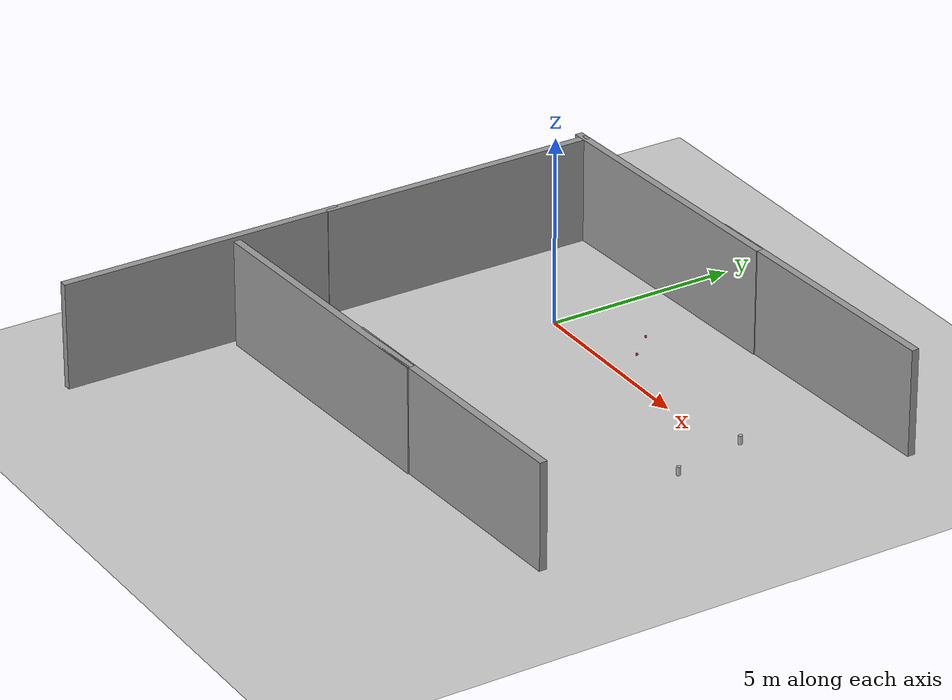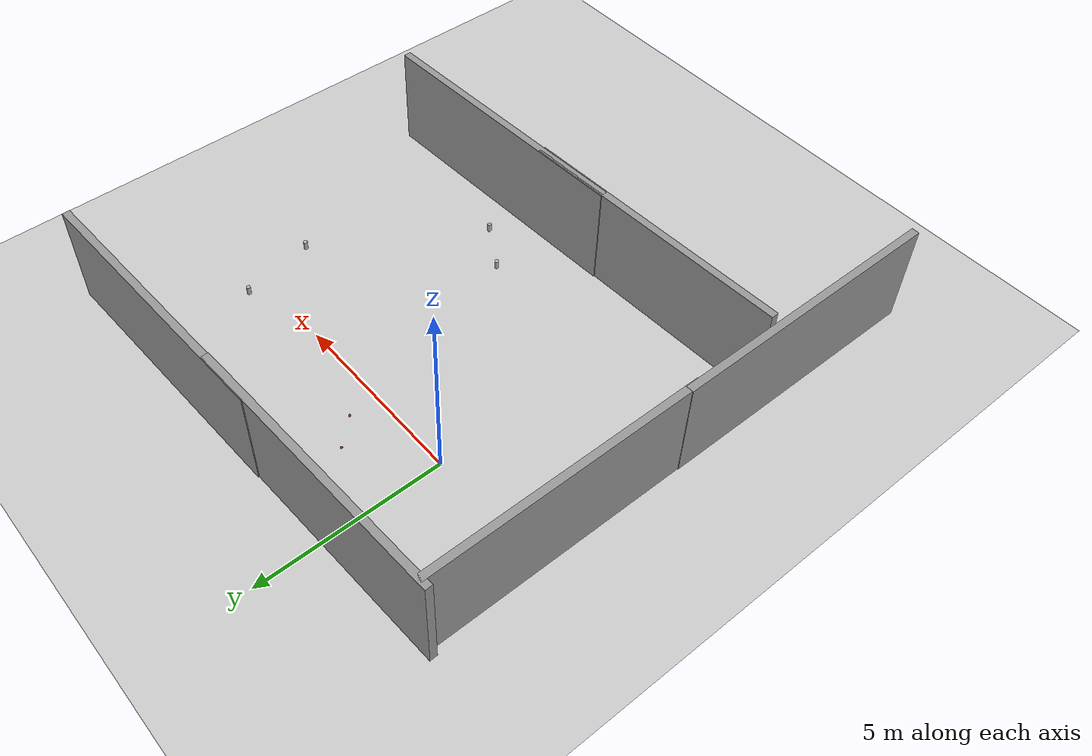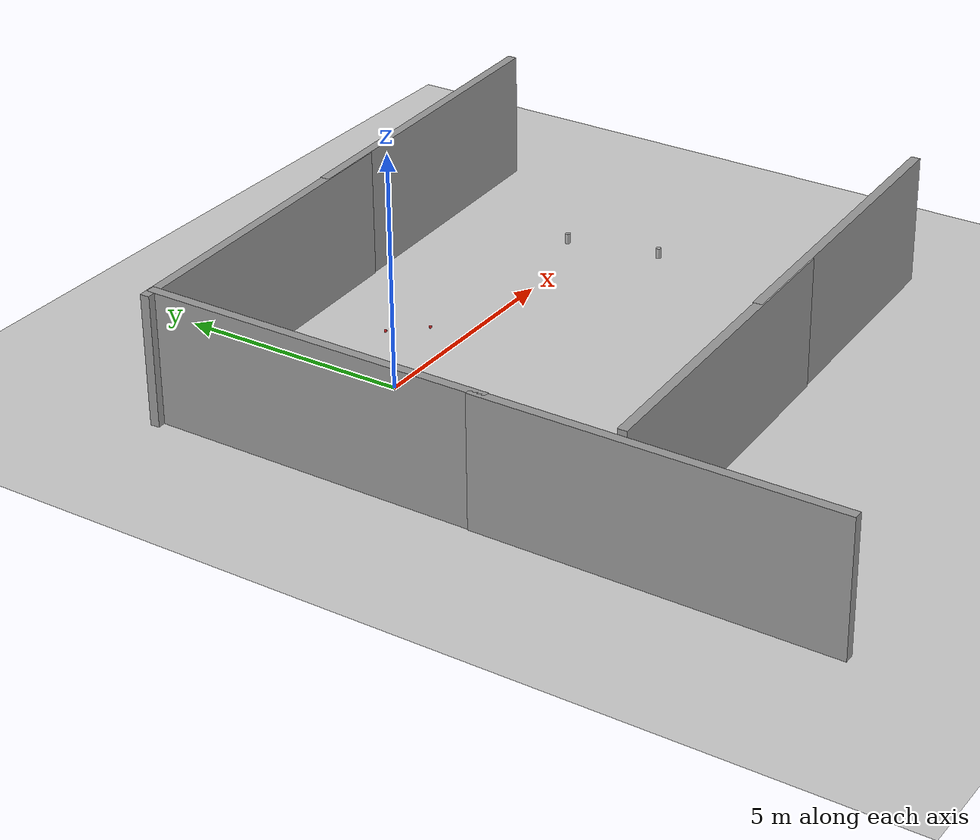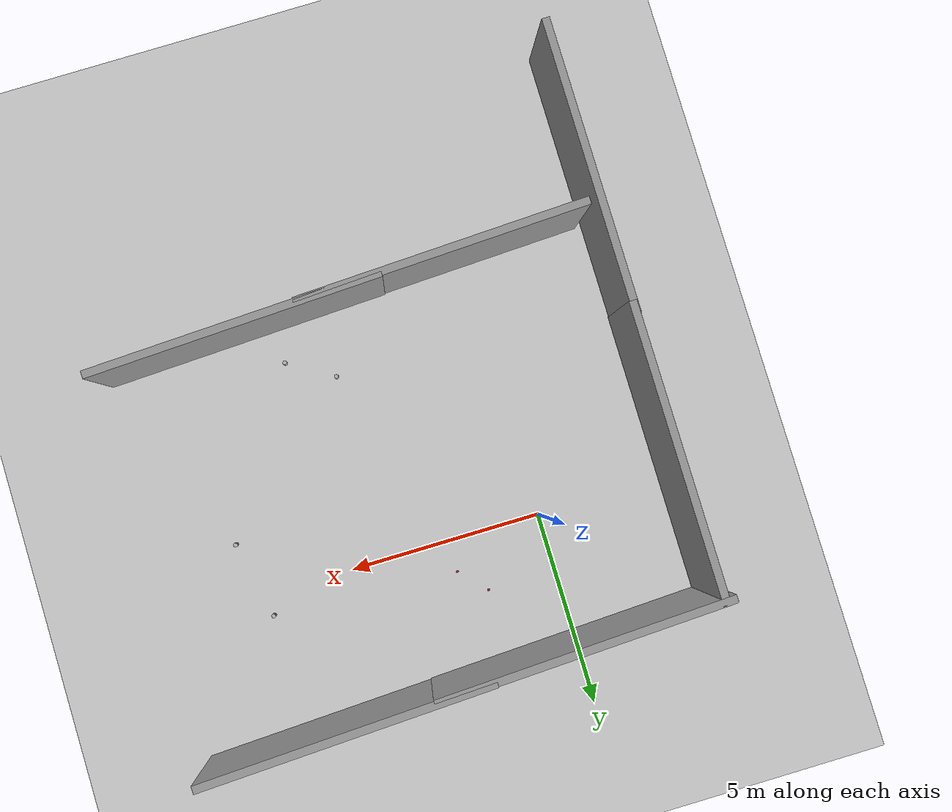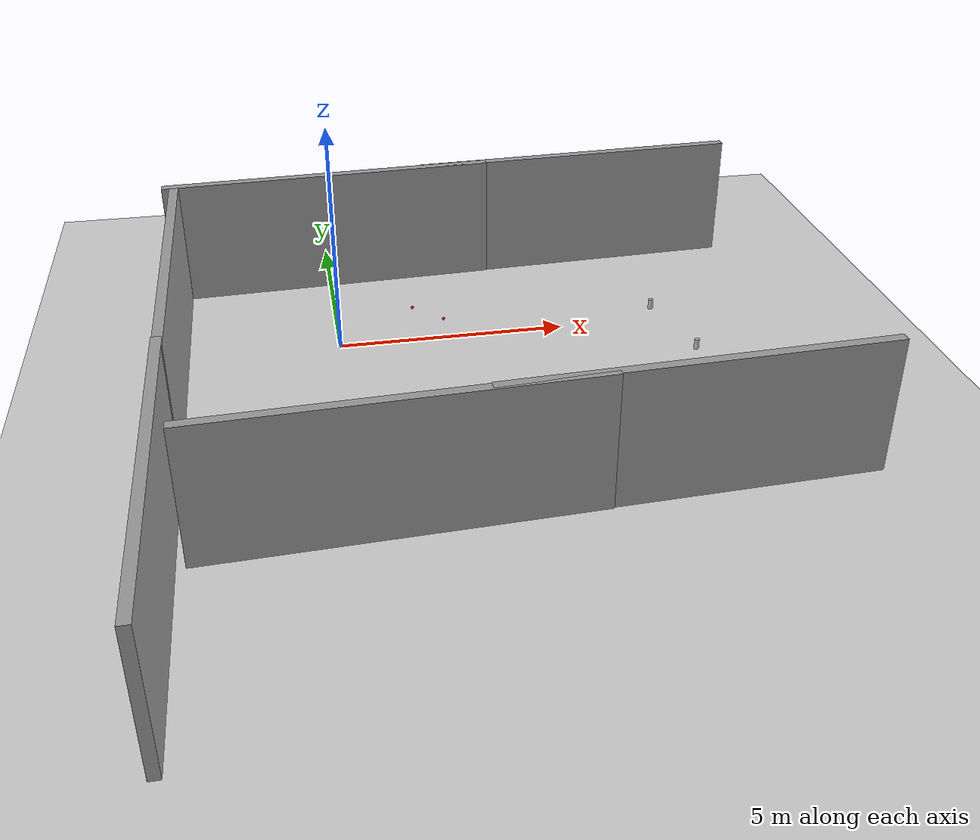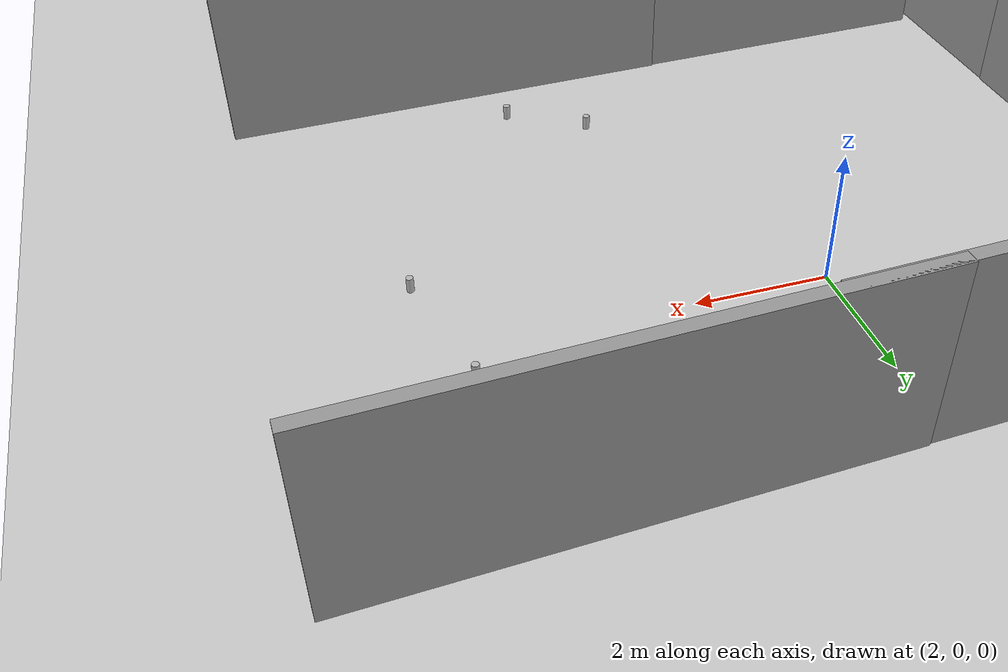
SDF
<sdf version="1.7">
 <world name="default">
  <light name="sun" type="directional">
   <pose>0 0 10 0 -0 0</pose>
   <diffuse>0.8 0.8 0.8 1</diffuse>
   <specular>0.1 0.1 0.1 1</specular>
   <attenuation>
    <range>1000</range>
    <constant>0.9</constant>
    <linear>0.01</linear>
    <quadratic>0.001</quadratic>
   </attenuation>
   <direction>-0.5 0.5 -1</direction>
   <spot><inner_angle>0</inner_angle><outer_angle>0</outer_angle><falloff>0</falloff></spot>
  </light>
  <model name="ground_plane">
   <static>1</static>
   <link name="link">
    <collision name="collision">
     <geometry><plane><normal>0 0 1</normal><size>100 100</size></plane></geometry>
     <surface><friction><ode><mu>100</mu><mu2>50</mu2></ode></friction></surface>
    </collision>
    <visual name="visual">
     <cast_shadows>0</cast_shadows>
     <geometry><plane><normal>0 0 1</normal><size>100 100</size></plane></geometry>
     <material>
      <script><uri>file://media/materials/scripts/gazebo.material</uri><name>Gazebo/Grey</name></script>
     </material>
    </visual>
   </link>
  </model>
  <gravity>0 0 -9.8</gravity>
  <magnetic_field>6e-06 2.3e-05 -4.2e-05</magnetic_field>
  <atmosphere type="adiabatic"/>
  <physics name="default_physics" default="0" type="ode">
   <max_step_size>0.001</max_step_size>
   <real_time_factor>1</real_time_factor>
   <real_time_update_rate>1000</real_time_update_rate>
  </physics>
  <scene><ambient>0.4 0.4 0.4 1</ambient><background>0.7 0.7 0.7 1</background><shadows>1</shadows></scene>
  <spherical_coordinates>
   <surface_model>EARTH_WGS84</surface_model>
   <latitude_deg>0</latitude_deg>
   <longitude_deg>0</longitude_deg>
   <elevation>0</elevation>
   <heading_deg>0</heading_deg>
  </spherical_coordinates>
  <model name="grey_wall">
   <static>1</static>
   <link name="link">
    <pose>0 0 1.4 0 -0 0</pose>
    <collision name="collision"><geometry><box><size>7.5 0.2 2.8</size></box></geometry></collision>
    <visual name="visual">
     <cast_shadows>0</cast_shadows>
     <geometry><box><size>7.5 0.2 2.8</size></box></geometry>
     <material>
      <script>
       <uri>model://grey_wall/materials/scripts</uri>
       <uri>model://grey_wall/materials/textures</uri>
       <name>vrc/grey_wall</name>
      </script>
     </material>
    </visual>
   </link>
   <pose>0.10672 3.16127 0 0 -0 0.042952</pose>
  </model>
  <model name="grey_wall_clone">
   <static>1</static>
   <link name="link">
    <pose>0 0 1.4 0 -0 0</pose>
    <collision name="collision"><geometry><box><size>7.5 0.2 2.8</size></box></geometry></collision>
    <visual name="visual">
     <cast_shadows>0</cast_shadows>
     <geometry><box><size>7.5 0.2 2.8</size></box></geometry>
     <material>
      <script>
       <uri>model://grey_wall/materials/scripts</uri>
       <uri>model://grey_wall/materials/textures</uri>
       <name>vrc/grey_wall</name>
      </script>
     </material>
    </visual>
   </link>
   <pose>-3.36551 -0.65636 0 0 -0 1.57078</pose>
  </model>
  <model name="grey_wall_clone_0">
   <static>1</static>
   <link name="link">
    <pose>0 0 1.4 0 -0 0</pose>
    <collision name="collision"><geometry><box><size>7.5 0.2 2.8</size></box></geometry></collision>
    <visual name="visual">
     <cast_shadows>0</cast_shadows>
     <geometry><box><size>7.5 0.2 2.8</size></box></geometry>
     <material>
      <script>
       <uri>model://grey_wall/materials/scripts</uri>
       <uri>model://grey_wall/materials/textures</uri>
       <name>vrc/grey_wall</name>
      </script>
     </material>
    </visual>
   </link>
   <pose>0.633233 -6.84359 0 0 -0 0.042952</pose>
  </model>
  <model name="grey_wall_clone_0_clone">
   <static>1</static>
   <link name="link">
    <pose>0 0 1.4 0 -0 0</pose>
    <collision name="collision"><geometry><box><size>7.5 0.2 2.8</size></box></geometry></collision>
    <visual name="visual">
     <cast_shadows>0</cast_shadows>
     <geometry><box><size>7.5 0.2 2.8</size></box></geometry>
     <material>
      <script>
       <uri>model://grey_wall/materials/scripts</uri>
       <uri>model://grey_wall/materials/textures</uri>
       <name>vrc/grey_wall</name>
      </script>
     </material>
    </visual>
   </link>
   <pose>5.91519 -6.58807 0 0 -0 0.042952</pose>
  </model>
  <model name="grey_wall_clone_0_clone_0">
   <static>1</static>
   <link name="link">
    <pose>0 0 1.4 0 -0 0</pose>
    <collision name="collision"><geometry><box><size>7.5 0.2 2.8</size></box></geometry></collision>
    <visual name="visual">
     <cast_shadows>0</cast_shadows>
     <geometry><box><size>7.5 0.2 2.8</size></box></geometry>
     <material>
      <script>
       <uri>model://grey_wall/materials/scripts</uri>
       <uri>model://grey_wall/materials/textures</uri>
       <name>vrc/grey_wall</name>
      </script>
     </material>
    </visual>
   </link>
   <pose>6.05322 3.44004 0 0 -0 0.042952</pose>
  </model>
  <model name="grey_wall_clone_clone">
   <static>1</static>
   <link name="link">
    <pose>0 0 1.4 0 -0 0</pose>
    <collision name="collision"><geometry><box><size>7.5 0.2 2.8</size></box></geometry></collision>
    <visual name="visual">
     <cast_shadows>0</cast_shadows>
     <geometry><box><size>7.5 0.2 2.8</size></box></geometry>
     <material>
      <script>
       <uri>model://grey_wall/materials/scripts</uri>
       <uri>model://grey_wall/materials/textures</uri>
       <name>vrc/grey_wall</name>
      </script>
     </material>
    </visual>
   </link>
   <pose>-3.38362 -7.81171 0 0 -0 1.57078</pose>
  </model>
  <model name="beer">
   <link name="link">
    <pose>0 0 0.115 0 -0 0</pose>
    <inertial>
     <mass>0.39</mass>
     <inertia><ixx>0.00058</ixx><ixy>0</ixy><ixz>0</ixz><iyy>0.00058</iyy><iyz>0</iyz><izz>0.00019</izz></inertia>
    </inertial>
    <collision name="collision">
     <geometry><cylinder><radius>0.055</radius><length>0.23</length></cylinder></geometry>
    </collision>
    <visual name="visual">
     <geometry><cylinder><radius>0.055</radius><length>0.23</length></cylinder></geometry>
     <material>
      <script>
       <uri>model://beer/materials/scripts</uri>
       <uri>model://beer/materials/textures</uri>
       <name>Beer/Diffuse</name>
      </script>
     </material>
    </visual>
   </link>
   <pose>7.70085 -1.48879 -3e-06 0 -0 -6.6e-05</pose>
  </model>
  <model name="RoboCup SPL Ball">
   <static>0</static>
   <link name="ball">
    <inertial>
     <mass>0.0056</mass>
     <inertia>
      <ixx>2.37e-06</ixx>
      <iyy>2.37e-06</iyy>
      <izz>2.37e-06</izz>
      <ixy>0</ixy>
      <ixz>0</ixz>
      <iyz>0</iyz>
     </inertia>
    </inertial>
    <collision name="collision"><geometry><sphere><radius>0.0325</radius></sphere></geometry></collision>
    <visual name="visual">
     <geometry><sphere><radius>0.0325</radius></sphere></geometry>
     <material>
      <script><uri>file://media/materials/scripts/gazebo.material</uri><name>Gazebo/RedBright</name></script>
     </material>
    </visual>
   </link>
   <pose>1.78406 1.48154 0.0325 0 -0 0</pose>
  </model>
  <model name="beer_0">
   <link name="link">
    <pose>0 0 0.115 0 -0 0</pose>
    <inertial>
     <mass>0.39</mass>
     <inertia><ixx>0.00058</ixx><ixy>0</ixy><ixz>0</ixz><iyy>0.00058</iyy><iyz>0</iyz><izz>0.00019</izz></inertia>
    </inertial>
    <collision name="collision">
     <geometry><cylinder><radius>0.055</radius><length>0.23</length></cylinder></geometry>
    </collision>
    <visual name="visual">
     <geometry><cylinder><radius>0.055</radius><length>0.23</length></cylinder></geometry>
     <material>
      <script>
       <uri>model://beer/materials/scripts</uri>
       <uri>model://beer/materials/textures</uri>
       <name>Beer/Diffuse</name>
      </script>
     </material>
    </visual>
   </link>
   <pose>7.26022 0.531497 -7e-06 -1e-06 -0 -5.8e-05</pose>
  </model>
  <model name="beer_clone">
   <link name="link">
    <pose>0 0 0.115 0 -0 0</pose>
    <inertial>
     <mass>0.39</mass>
     <inertia><ixx>0.00058</ixx><ixy>0</ixy><ixz>0</ixz><iyy>0.00058</iyy><iyz>0</iyz><izz>0.00019</izz></inertia>
    </inertial>
    <collision name="collision">
     <geometry><cylinder><radius>0.055</radius><length>0.23</length></cylinder></geometry>
    </collision>
    <visual name="visual">
     <geometry><cylinder><radius>0.055</radius><length>0.23</length></cylinder></geometry>
     <material>
      <script>
       <uri>model://beer/materials/scripts</uri>
       <uri>model://beer/materials/textures</uri>
       <name>Beer/Diffuse</name>
      </script>
     </material>
    </visual>
   </link>
   <pose>3.98999 -4.92328 -3e-06 0 -0 -7.1e-05</pose>
  </model>
  <model name="beer_clone_0">
   <link name="link">
    <pose>0 0 0.115 0 -0 0</pose>
    <inertial>
     <mass>0.39</mass>
     <inertia><ixx>0.00058</ixx><ixy>0</ixy><ixz>0</ixz><iyy>0.00058</iyy><iyz>0</iyz><izz>0.00019</izz></inertia>
    </inertial>
    <collision name="collision">
     <geometry><cylinder><radius>0.055</radius><length>0.23</length></cylinder></geometry>
    </collision>
    <visual name="visual">
     <geometry><cylinder><radius>0.055</radius><length>0.23</length></cylinder></geometry>
     <material>
      <script>
       <uri>model://beer/materials/scripts</uri>
       <uri>model://beer/materials/textures</uri>
       <name>Beer/Diffuse</name>
      </script>
     </material>
    </visual>
   </link>
   <pose>5.1728 -5.64622 -3e-06 0 -0 -6.7e-05</pose>
  </model>
  <model name="RoboCup_SPL_Ball_clone">
   <link name="ball">
    <inertial>
     <mass>0.0056</mass>
     <inertia>
      <ixx>2.37e-06</ixx>
      <iyy>2.37e-06</iyy>
      <izz>2.37e-06</izz>
      <ixy>0</ixy>
      <ixz>0</ixz>
      <iyz>0</iyz>
     </inertia>
    </inertial>
    <visual name="visual">
     <geometry><sphere><radius>0.0325</radius></sphere></geometry>
     <material>
      <script><uri>file://media/materials/scripts/gazebo.material</uri><name>Gazebo/RedBright</name></script>
      <shader type="pixel"><normal_map>__default__</normal_map></shader>
      <ambient>1 1 0 1</ambient>
      <diffuse>1 1 0 1</diffuse>
      <specular>1 1 0 1</specular>
      <emissive>0 0 0 1</emissive>
     </material>
    </visual>
    <collision name="collision">
     <geometry><sphere><radius>0.0325</radius></sphere></geometry>
     <surface>
      <friction>
       <ode><mu>1</mu><mu2>1</mu2><fdir1>0 0 0</fdir1><slip1>0</slip1><slip2>0</slip2></ode>
       <torsional>
        <coefficient>1</coefficient>
        <patch_radius>0</patch_radius>
        <surface_radius>0</surface_radius>
        <use_patch_radius>1</use_patch_radius>
        <ode><slip>0</slip></ode>
       </torsional>
      </friction>
      <bounce><restitution_coefficient>0</restitution_coefficient><threshold>1e+06</threshold></bounce>
      <contact>
       <collide_without_contact>0</collide_without_contact>
       <collide_without_contact_bitmask>1</collide_without_contact_bitmask>
       <collide_bitmask>1</collide_bitmask>
       <ode>
        <soft_cfm>0</soft_cfm>
        <soft_erp>0.2</soft_erp>
        <kp>1e+13</kp>
        <kd>1</kd>
        <max_vel>0.01</max_vel>
        <min_depth>0</min_depth>
       </ode>
       <bullet>
        <split_impulse>1</split_impulse>
        <split_impulse_penetration_threshold>-0.01</split_impulse_penetration_threshold>
        <soft_cfm>0</soft_cfm>
        <soft_erp>0.2</soft_erp>
        <kp>1e+13</kp>
        <kd>1</kd>
       </bullet>
      </contact>
     </surface>
    </collision>
   </link>
   <static>0</static>
   <pose>2.42051 0.8113 0.0325 0 -0 0</pose>
  </model>
 </world>
</sdf>
